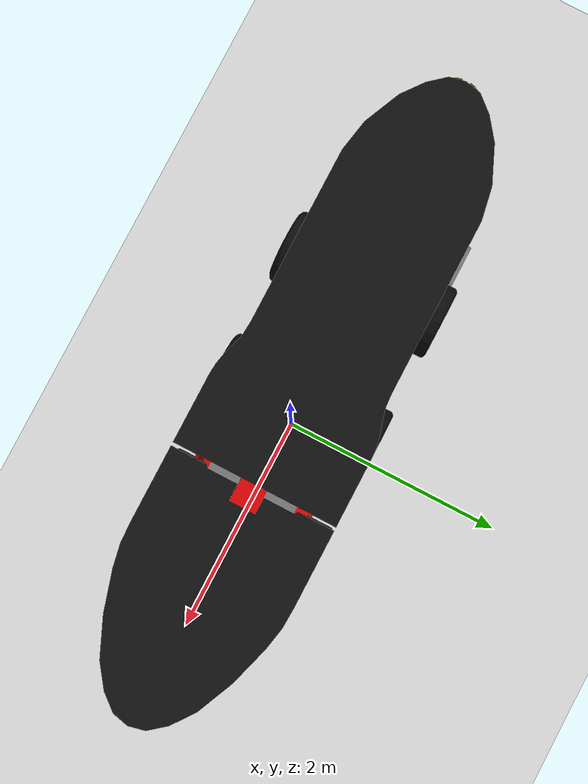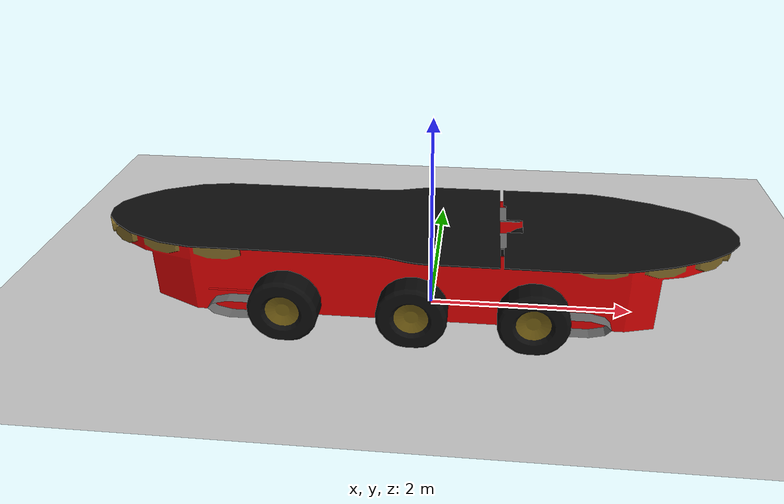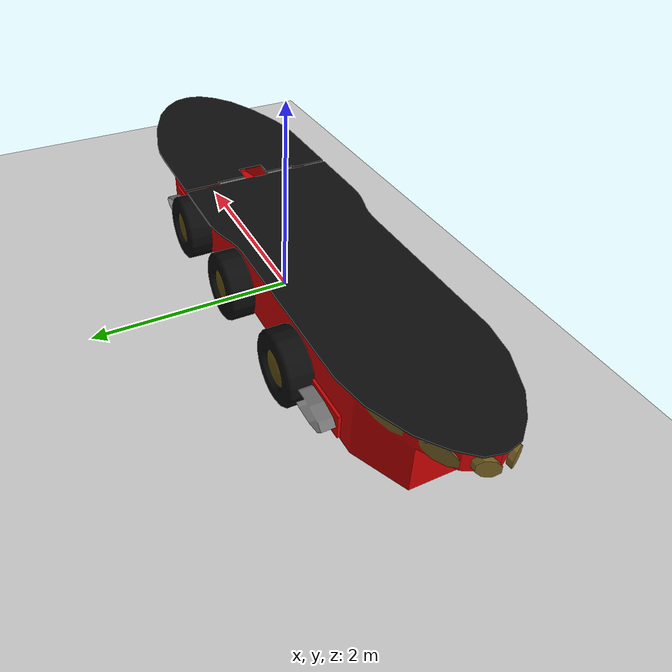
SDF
<?xml version="1.0"?>
<sdf version="1.6">
  <world name="default">

    <include>
      <uri>model://ground_plane</uri>
    </include>

    <include>
      <uri>model://sun</uri>
    </include>

    <model name='vehicle'>
      <pose>0 0 0.325 0 -0 0</pose>

      <link name='chassis'>
        <pose>-0.2 -0 0.2 0 -0 0</pose>
        <inertial>
          <mass>1.14395</mass>
          <inertia>
            <ixx>0.126164</ixx>
            <ixy>0</ixy>
            <ixz>0</ixz>
            <iyy>0.416519</iyy>
            <iyz>0</iyz>
            <izz>0.481014</izz>
          </inertia>
        </inertial>
        <visual name='visual'>
          <geometry>
            <mesh>
              <uri>model://pioneer3at/meshes/chassis.dae</uri>
              <scale>12 4 4</scale>
              <pose>0 0 7</pose>
            </mesh>
          </geometry>
        </visual>
        <collision name='collision'>
          <geometry>
            <box>
              <size>1.01142 1 0.568726</size>
            </box>
          </geometry>
        </collision>
      </link>

      <link name='front_left_wheel'>
        <pose>0.994283 0.625029 -0.025 -1.5707 0 0</pose>
        <inertial>
          <mass>2</mass>
          <inertia>
            <ixx>0.145833</ixx>
            <ixy>0</ixy>
            <ixz>0</ixz>
            <iyy>0.145833</iyy>
            <iyz>0</iyz>
            <izz>0.125</izz>
          </inertia>
        </inertial>
        <visual name='visual'>
          <geometry>
            <mesh>
              <uri>model://pioneer3at/meshes/wheel.dae</uri>
              <scale>3 3 3</scale>
            </mesh>
          </geometry>
        </visual>
        <collision name='collision'>
          <geometry>
            <sphere>
              <radius>0.3</radius>
            </sphere>
          </geometry>
          <surface>
            <friction>
              <ode>
                <mu>1</mu>
                <mu2>1</mu2>
                <slip1>0</slip1>
                <slip2>0</slip2>
              </ode>
            </friction>
            <contact>
              <ode>
                <soft_cfm>0</soft_cfm>
                <soft_erp>0.2</soft_erp>
                <kp>1e+13</kp>
                <kd>1</kd>
                <max_vel>0.01</max_vel>
                <min_depth>0.01</min_depth>
              </ode>
            </contact>
          </surface>
        </collision>
      </link>

      <link name='front_right_wheel'>
        <pose>0.994282 -0.625029 -0.025 -1.5707 0 0</pose>
        <inertial>
          <mass>2</mass>
          <inertia>
            <ixx>0.145833</ixx>
            <ixy>0</ixy>
            <ixz>0</ixz>
            <iyy>0.145833</iyy>
            <iyz>0</iyz>
            <izz>0.125</izz>
          </inertia>
        </inertial>
        <visual name='visual'>
          <geometry>
            <mesh>
              <uri>model://pioneer3at/meshes/wheel.dae</uri>
              <scale>3 3 3</scale>
            </mesh>
          </geometry>
        </visual>
        <collision name='collision'>
          <geometry>
            <sphere>
              <radius>0.3</radius>
            </sphere>
          </geometry>
          <surface>
            <friction>
              <ode>
                <mu>1</mu>
                <mu2>1</mu2>
                <slip1>0</slip1>
                <slip2>0</slip2>
              </ode>
            </friction>
            <contact>
              <ode>
                <soft_cfm>0</soft_cfm>
                <soft_erp>0.2</soft_erp>
                <kp>1e+13</kp>
                <kd>1</kd>
                <max_vel>0.01</max_vel>
                <min_depth>0.01</min_depth>
              </ode>
            </contact>
          </surface>
        </collision>
       </link>

       <link name='middle_left_wheel'>
        <pose>-0.137138 0.625029 -0.025 -1.5707 0 0</pose>
        <inertial>
          <mass>2</mass>
          <inertia>
            <ixx>0.145833</ixx>
            <ixy>0</ixy>
            <ixz>0</ixz>
            <iyy>0.145833</iyy>
            <iyz>0</iyz>
            <izz>0.125</izz>
          </inertia>
        </inertial>
        <visual name='visual'>
          <geometry>
            <mesh>
              <uri>model://pioneer3at/meshes/wheel.dae</uri>
              <scale>3 3 3</scale>
            </mesh>
          </geometry>
        </visual>
        <collision name='collision'>
          <geometry>
            <sphere>
              <radius>0.3</radius>
            </sphere>
          </geometry>
          <surface>
            <friction>
              <ode>
                <mu>1</mu>
                <mu2>1</mu2>
                <slip1>0</slip1>
                <slip2>0</slip2>
              </ode>
            </friction>
            <contact>
              <ode>
                <soft_cfm>0</soft_cfm>
                <soft_erp>0.2</soft_erp>
                <kp>1e+13</kp>
                <kd>1</kd>
                <max_vel>0.01</max_vel>
                <min_depth>0.01</min_depth>
              </ode>
            </contact>
          </surface>
        </collision>
      </link>

      <link name='middle_right_wheel'>
        <pose>-0.137138 -0.625029 -0.025 -1.5707 0 0</pose>
        <inertial>
          <mass>2</mass>
          <inertia>
            <ixx>0.145833</ixx>
            <ixy>0</ixy>
            <ixz>0</ixz>
            <iyy>0.145833</iyy>
            <iyz>0</iyz>
            <izz>0.125</izz>
          </inertia>
        </inertial>
        <visual name='visual'>
          <geometry>
            <mesh>
              <uri>model://pioneer3at/meshes/wheel.dae</uri>
              <scale>3 3 3</scale>
            </mesh>
          </geometry>
        </visual>
        <collision name='collision'>
          <geometry>
            <sphere>
              <radius>0.3</radius>
            </sphere>
          </geometry>
          <surface>
            <friction>
              <ode>
                <mu>1</mu>
                <mu2>1</mu2>
                <slip1>0</slip1>
                <slip2>0</slip2>
              </ode>
            </friction>
            <contact>
              <ode>
                <soft_cfm>0</soft_cfm>
                <soft_erp>0.2</soft_erp>
                <kp>1e+13</kp>
                <kd>1</kd>
                <max_vel>0.01</max_vel>
                <min_depth>0.01</min_depth>
              </ode>
            </contact>
          </surface>
        </collision>
      </link>

      <link name='back_left_wheel'>
        <pose>-1.357138 0.625029 -0.025 -1.5707 0 0</pose>
        <inertial>
          <mass>2</mass>
          <inertia>
            <ixx>0.145833</ixx>
            <ixy>0</ixy>
            <ixz>0</ixz>
            <iyy>0.145833</iyy>
            <iyz>0</iyz>
            <izz>0.125</izz>
          </inertia>
        </inertial>
        <visual name='visual'>
          <geometry>
            <mesh>
              <uri>model://pioneer3at/meshes/wheel.dae</uri>
              <scale>3 3 3</scale>
            </mesh>
          </geometry>
        </visual>
        <collision name='collision'>
          <geometry>
            <sphere>
              <radius>0.3</radius>
            </sphere>
          </geometry>
          <surface>
            <friction>
              <ode>
                <mu>1</mu>
                <mu2>1</mu2>
                <slip1>0</slip1>
                <slip2>0</slip2>
              </ode>
            </friction>
            <contact>
              <ode>
                <soft_cfm>0</soft_cfm>
                <soft_erp>0.2</soft_erp>
                <kp>1e+13</kp>
                <kd>1</kd>
                <max_vel>0.01</max_vel>
                <min_depth>0.01</min_depth>
              </ode>
            </contact>
          </surface>
        </collision>
      </link>

      <link name='back_right_wheel'>
        <pose>-1.357138 -0.625029 -0.025 -1.5707 0 0</pose>
        <inertial>
          <mass>2</mass>
          <inertia>
            <ixx>0.145833</ixx>
            <ixy>0</ixy>
            <ixz>0</ixz>
            <iyy>0.145833</iyy>
            <iyz>0</iyz>
            <izz>0.125</izz>
          </inertia>
        </inertial>
        <visual name='visual'>
          <geometry>
            <mesh>
              <uri>model://pioneer3at/meshes/wheel.dae</uri>
              <scale>3 3 3</scale>
            </mesh>
          </geometry>
        </visual>
        <collision name='collision'>
          <geometry>
            <sphere>
              <radius>0.3</radius>
            </sphere>
          </geometry>
          <surface>
            <friction>
              <ode>
                <mu>1</mu>
                <mu2>1</mu2>
                <slip1>0</slip1>
                <slip2>0</slip2>
              </ode>
            </friction>
            <contact>
              <ode>
                <soft_cfm>0</soft_cfm>
                <soft_erp>0.2</soft_erp>
                <kp>1e+13</kp>
                <kd>1</kd>
                <max_vel>0.01</max_vel>
                <min_depth>0.01</min_depth>
              </ode>
            </contact>
          </surface>
        </collision>
      </link>

      <joint name='front_left_wheel_joint' type='revolute'>
        <parent>chassis</parent>
        <child>front_left_wheel</child>
        <axis>
          <xyz>0 0 1</xyz>
          <limit>
            <lower>-1.79769e+308</lower>
            <upper>1.79769e+308</upper>
          </limit>
        </axis>
      </joint>

      <joint name='front_right_wheel_joint' type='revolute'>
        <parent>chassis</parent>
        <child>front_right_wheel</child>
        <axis>
          <xyz>0 0 1</xyz>
          <limit>
            <lower>-1.79769e+308</lower>
            <upper>1.79769e+308</upper>
          </limit>
        </axis>
      </joint>

      <joint name='middle_left_wheel_joint' type='revolute'>
        <parent>chassis</parent>
        <child>middle_left_wheel</child>
          <mass>1</mass>
        <axis>0 0 1/xyz>
          <limit>
            <lower>-1.79769e+308</lower>
            <upper>1.79769e+308</upper>
          </limit>
        </axis>
      </joint>

      <joint name='middle_right_wheel_joint' type='revolute'>
        <parent>chassis</parent>
        <child>middle_right_wheel</child>
        <axis>
          <xyz>0 0 1</xyz>
          <limit>
            <lower>-1.79769e+308</lower>
            <upper>1.79769e+308</upper>
          </limit>
        </axis>
      </joint>

      <joint name='back_left_wheel_joint' type='revolute'>
        <parent>chassis</parent>
        <child>back_left_wheel</child>
          <mass>1</mass>
        <axis>0 0 1/xyz>
          <limit>
            <lower>-1.79769e+308</lower>
            <upper>1.79769e+308</upper>
          </limit>
        </axis>
      </joint>

      <joint name='back_right_wheel_joint' type='revolute'>
        <parent>chassis</parent>
        <child>back_right_wheel</child>
        <axis>
          <xyz>0 0 1</xyz>
          <limit>
            <lower>-1.79769e+308</lower>
            <upper>1.79769e+308</upper>
          </limit>
        </axis>
      </joint>

      <plugin name='diff_drive' filename='libgazebo_ros_diff_drive.so'>

        <ros>
          <namespace>/demo</namespace>
          <remapping>cmd_vel:=cmd_demo</remapping>
          <remapping>odom:=odom_demo</remapping>
        </ros>

        <!-- wheels -->
        <left_joint>front_left_wheel_joint</left_joint>
        <right_joint>front_right_wheel_joint</right_joint>
        <mid_left_joint>middle_left_wheel_joint</mid_left_joint>
        <mid_right_joint>middle_right_wheel_joint</mid_right_joint>
        <back_left_joint>back_left_wheel_joint</back_left_joint>
        <back_right_joint>back_right_wheel_joint</back_right_joint>

        <!-- kinematics -->
        <wheel_separation>1.25</wheel_separation>
        <wheel_diameter>0.6</wheel_diameter>

        <!-- limits -->
        <max_wheel_torque>20</max_wheel_torque>
        <max_wheel_acceleration>1.0</max_wheel_acceleration>

        <!-- output -->
        <publish_odom>true</publish_odom>
        <publish_odom_tf>true</publish_odom_tf>
        <publish_wheel_tf>true</publish_wheel_tf>

        <odometry_frame>odom_demo</odometry_frame>
        <robot_base_frame>chassis</robot_base_frame>

      </plugin>

    </model>

  </world>
</sdf>
